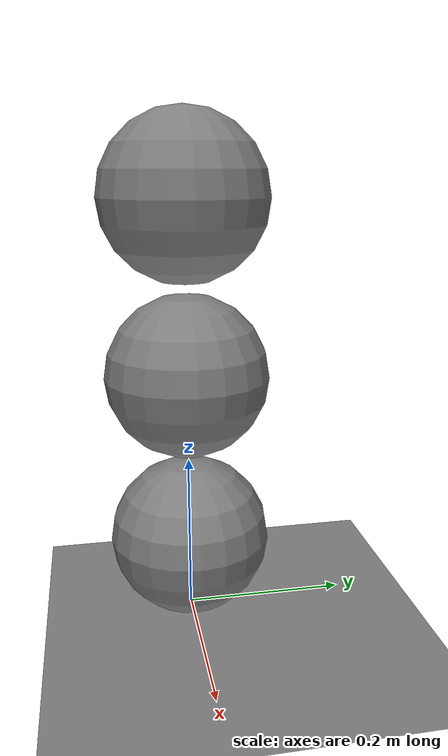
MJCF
<mujoco model="island_chain">
        <option gravity="0 0 -9.81" timestep="0.002" sleep_tolerance="0.5">
            <flag sleep="enable"/>
        </option>
        <worldbody>
            <geom type="plane" size="5 5 0.1"/>
            <body name="A" pos="0 0 0.1">
                <freejoint name="jA"/>
                <geom type="sphere" size="0.1" mass="1.0"/>
            </body>
            <body name="B" pos="0 0 0.31">
                <freejoint name="jB"/>
                <geom type="sphere" size="0.1" mass="1.0"/>
            </body>
            <body name="C" pos="0 0 0.52">
                <freejoint name="jC"/>
                <geom type="sphere" size="0.1" mass="1.0"/>
            </body>
        </worldbody>
    </mujoco>
